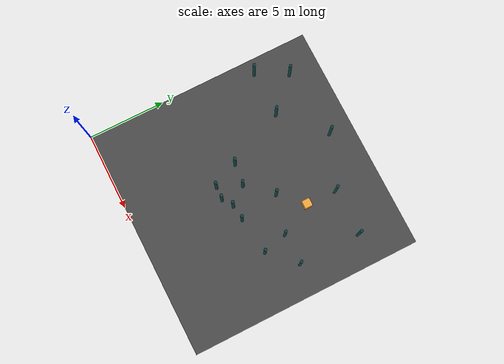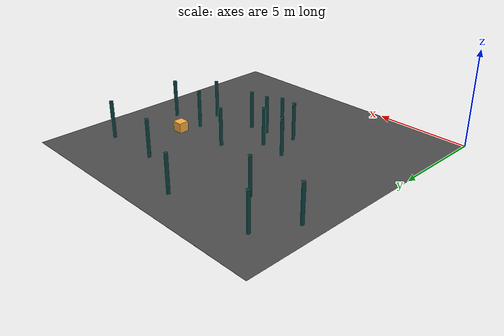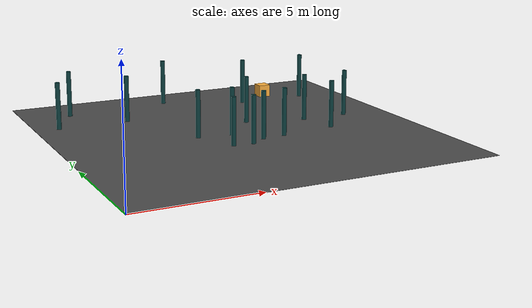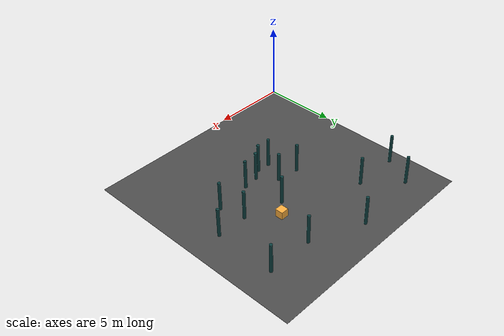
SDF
<sdf version="1.6">
 <world name="default">
  <model name="env_plane">
   <link name="link">
    <inertial>
     <mass>1</mass>
     <inertia><ixx>1</ixx><ixy>0</ixy><ixz>0</ixz><iyy>1</iyy><iyz>0</iyz><izz>1</izz></inertia>
    </inertial>
    <visual name="visual">
     <cast_shadows>0</cast_shadows>
     <geometry><box><size>15 15 0.01</size></box></geometry>
     <material>
      <script>
       <uri>model://asphalt_plane/materials/scripts</uri>
       <uri>model://asphalt_plane/materials/textures</uri>
       <name>vrc/asphalt</name>
      </script>
      <shader type="pixel"><normal_map>__default__</normal_map></shader>
      <diffuse>0.7 0.7 0.7 1</diffuse>
      <ambient>0.5 0.5 0.5 1</ambient>
      <specular>0.5 0.5 0.5 1</specular>
      <emissive>0.7 0.7 0.7 1</emissive>
     </material>
    </visual>
    <collision name="collision">
     <geometry><box><size>20 20 0.1</size></box></geometry>
     <surface>
      <friction>
       <ode><mu>1</mu><mu2>1</mu2><fdir1>0 0 0</fdir1><slip1>0</slip1><slip2>0</slip2></ode>
       <torsional>
        <coefficient>1</coefficient>
        <patch_radius>0</patch_radius>
        <surface_radius>0</surface_radius>
        <use_patch_radius>1</use_patch_radius>
        <ode><slip>0</slip></ode>
       </torsional>
      </friction>
      <bounce><restitution_coefficient>0</restitution_coefficient><threshold>1e+06</threshold></bounce>
      <contact>
       <collide_without_contact>0</collide_without_contact>
       <collide_without_contact_bitmask>1</collide_without_contact_bitmask>
       <collide_bitmask>1</collide_bitmask>
       <ode>
        <soft_cfm>0</soft_cfm>
        <soft_erp>0.2</soft_erp>
        <kp>1e+13</kp>
        <kd>1</kd>
        <max_vel>0.01</max_vel>
        <min_depth>0</min_depth>
       </ode>
       <bullet>
        <split_impulse>1</split_impulse>
        <split_impulse_penetration_threshold>-0.01</split_impulse_penetration_threshold>
        <soft_cfm>0</soft_cfm>
        <soft_erp>0.2</soft_erp>
        <kp>1e+13</kp>
        <kd>1</kd>
       </bullet>
      </contact>
     </surface>
    </collision>
   </link>
   <static>1</static>
   <pose>7.5 7.5 0 0 -0 0</pose>
  </model>
  <model name="obstacle">
   <link name="link">
    <inertial>
     <mass>112.569</mass>
     <inertia><ixx>33.2512</ixx><ixy>0</ixy><ixz>0</ixz><iyy>33.2512</iyy><iyz>0</iyz><izz>0.537779</izz></inertia>
    </inertial>
    <visual name="visual">
     <geometry><cylinder><radius>0.1</radius><length>2</length></cylinder></geometry>
     <material>
      <script><name>Gazebo/Grey</name><uri>file://media/materials/scripts/gazebo.material</uri></script>
      <shader type="pixel"><normal_map>__default__</normal_map></shader>
      <ambient>0.05 0.25 0.25 1</ambient>
      <diffuse>0.3 0.3 0.3 1</diffuse>
      <specular>0.01 0.01 0.01 1</specular>
      <emissive>0.1 0.1 0.1 1</emissive>
      <lighting>1</lighting>
     </material>
    </visual>
    <collision name="collision">
     <geometry><cylinder><radius>0.097748</radius><length>1.87509</length></cylinder></geometry>
     <surface>
      <friction>
       <ode><mu>1</mu><mu2>1</mu2><fdir1>0 0 0</fdir1><slip1>0</slip1><slip2>0</slip2></ode>
       <torsional>
        <coefficient>1</coefficient>
        <patch_radius>0</patch_radius>
        <surface_radius>0</surface_radius>
        <use_patch_radius>1</use_patch_radius>
        <ode><slip>0</slip></ode>
       </torsional>
      </friction>
      <bounce><restitution_coefficient>0</restitution_coefficient><threshold>1e+06</threshold></bounce>
      <contact>
       <collide_without_contact>0</collide_without_contact>
       <collide_without_contact_bitmask>1</collide_without_contact_bitmask>
       <collide_bitmask>1</collide_bitmask>
       <ode>
        <soft_cfm>0</soft_cfm>
        <soft_erp>0.2</soft_erp>
        <kp>1e+13</kp>
        <kd>1</kd>
        <max_vel>0.01</max_vel>
        <min_depth>0</min_depth>
       </ode>
       <bullet>
        <split_impulse>1</split_impulse>
        <split_impulse_penetration_threshold>-0.01</split_impulse_penetration_threshold>
        <soft_cfm>0</soft_cfm>
        <soft_erp>0.2</soft_erp>
        <kp>1e+13</kp>
        <kd>1</kd>
       </bullet>
      </contact>
     </surface>
    </collision>
   </link>
   <static>0</static>
   <pose>6.48533 5.60755 0.987541 -5.5e-05 2.7e-05 0.005159</pose>
  </model>
  <model name="obstacle_clone_3">
   <link name="link">
    <inertial>
     <mass>112.569</mass>
     <inertia><ixx>33.2512</ixx><ixy>0</ixy><ixz>0</ixz><iyy>33.2512</iyy><iyz>0</iyz><izz>0.537779</izz></inertia>
    </inertial>
    <visual name="visual">
     <geometry><cylinder><radius>0.1</radius><length>2</length></cylinder></geometry>
     <material>
      <script><name>Gazebo/Grey</name><uri>file://media/materials/scripts/gazebo.material</uri></script>
      <shader type="pixel"><normal_map>__default__</normal_map></shader>
      <ambient>0.05 0.25 0.25 1</ambient>
      <diffuse>0.3 0.3 0.3 1</diffuse>
      <specular>0.01 0.01 0.01 1</specular>
      <emissive>0.1 0.1 0.1 1</emissive>
      <lighting>1</lighting>
     </material>
    </visual>
    <collision name="collision">
     <geometry><cylinder><radius>0.097748</radius><length>1.87509</length></cylinder></geometry>
     <surface>
      <friction>
       <ode><mu>1</mu><mu2>1</mu2><fdir1>0 0 0</fdir1><slip1>0</slip1><slip2>0</slip2></ode>
       <torsional>
        <coefficient>1</coefficient>
        <patch_radius>0</patch_radius>
        <surface_radius>0</surface_radius>
        <use_patch_radius>1</use_patch_radius>
        <ode><slip>0</slip></ode>
       </torsional>
      </friction>
      <bounce><restitution_coefficient>0</restitution_coefficient><threshold>1e+06</threshold></bounce>
      <contact>
       <collide_without_contact>0</collide_without_contact>
       <collide_without_contact_bitmask>1</collide_without_contact_bitmask>
       <collide_bitmask>1</collide_bitmask>
       <ode>
        <soft_cfm>0</soft_cfm>
        <soft_erp>0.2</soft_erp>
        <kp>1e+13</kp>
        <kd>1</kd>
        <max_vel>0.01</max_vel>
        <min_depth>0</min_depth>
       </ode>
       <bullet>
        <split_impulse>1</split_impulse>
        <split_impulse_penetration_threshold>-0.01</split_impulse_penetration_threshold>
        <soft_cfm>0</soft_cfm>
        <soft_erp>0.2</soft_erp>
        <kp>1e+13</kp>
        <kd>1</kd>
       </bullet>
      </contact>
     </surface>
    </collision>
   </link>
   <static>0</static>
   <pose>1.00015 11.0001 0.987542 -5.8e-05 2.6e-05 0.004277</pose>
  </model>
  <model name="obstacle_clone_5">
   <link name="link">
    <inertial>
     <mass>112.569</mass>
     <inertia><ixx>33.2512</ixx><ixy>0</ixy><ixz>0</ixz><iyy>33.2512</iyy><iyz>0</iyz><izz>0.537779</izz></inertia>
    </inertial>
    <visual name="visual">
     <geometry><cylinder><radius>0.1</radius><length>2</length></cylinder></geometry>
     <material>
      <script><name>Gazebo/Grey</name><uri>file://media/materials/scripts/gazebo.material</uri></script>
      <shader type="pixel"><normal_map>__default__</normal_map></shader>
      <ambient>0.05 0.25 0.25 1</ambient>
      <diffuse>0.3 0.3 0.3 1</diffuse>
      <specular>0.01 0.01 0.01 1</specular>
      <emissive>0.1 0.1 0.1 1</emissive>
      <lighting>1</lighting>
     </material>
    </visual>
    <collision name="collision">
     <geometry><cylinder><radius>0.097748</radius><length>1.87509</length></cylinder></geometry>
     <surface>
      <friction>
       <ode><mu>1</mu><mu2>1</mu2><fdir1>0 0 0</fdir1><slip1>0</slip1><slip2>0</slip2></ode>
       <torsional>
        <coefficient>1</coefficient>
        <patch_radius>0</patch_radius>
        <surface_radius>0</surface_radius>
        <use_patch_radius>1</use_patch_radius>
        <ode><slip>0</slip></ode>
       </torsional>
      </friction>
      <bounce><restitution_coefficient>0</restitution_coefficient><threshold>1e+06</threshold></bounce>
      <contact>
       <collide_without_contact>0</collide_without_contact>
       <collide_without_contact_bitmask>1</collide_without_contact_bitmask>
       <collide_bitmask>1</collide_bitmask>
       <ode>
        <soft_cfm>0</soft_cfm>
        <soft_erp>0.2</soft_erp>
        <kp>1e+13</kp>
        <kd>1</kd>
        <max_vel>0.01</max_vel>
        <min_depth>0</min_depth>
       </ode>
       <bullet>
        <split_impulse>1</split_impulse>
        <split_impulse_penetration_threshold>-0.01</split_impulse_penetration_threshold>
        <soft_cfm>0</soft_cfm>
        <soft_erp>0.2</soft_erp>
        <kp>1e+13</kp>
        <kd>1</kd>
       </bullet>
      </contact>
     </surface>
    </collision>
   </link>
   <static>0</static>
   <pose>2.05222 12.9605 0.987542 -5.9e-05 2.7e-05 0.007141</pose>
  </model>
  <model name="obstacle_clone_6">
   <link name="link">
    <inertial>
     <mass>112.569</mass>
     <inertia><ixx>33.2512</ixx><ixy>0</ixy><ixz>0</ixz><iyy>33.2512</iyy><iyz>0</iyz><izz>0.537779</izz></inertia>
    </inertial>
    <visual name="visual">
     <geometry><cylinder><radius>0.1</radius><length>2</length></cylinder></geometry>
     <material>
      <script><name>Gazebo/Grey</name><uri>file://media/materials/scripts/gazebo.material</uri></script>
      <shader type="pixel"><normal_map>__default__</normal_map></shader>
      <ambient>0.05 0.25 0.25 1</ambient>
      <diffuse>0.3 0.3 0.3 1</diffuse>
      <specular>0.01 0.01 0.01 1</specular>
      <emissive>0.1 0.1 0.1 1</emissive>
      <lighting>1</lighting>
     </material>
    </visual>
    <collision name="collision">
     <geometry><cylinder><radius>0.097748</radius><length>1.87509</length></cylinder></geometry>
     <surface>
      <friction>
       <ode><mu>1</mu><mu2>1</mu2><fdir1>0 0 0</fdir1><slip1>0</slip1><slip2>0</slip2></ode>
       <torsional>
        <coefficient>1</coefficient>
        <patch_radius>0</patch_radius>
        <surface_radius>0</surface_radius>
        <use_patch_radius>1</use_patch_radius>
        <ode><slip>0</slip></ode>
       </torsional>
      </friction>
      <bounce><restitution_coefficient>0</restitution_coefficient><threshold>1e+06</threshold></bounce>
      <contact>
       <collide_without_contact>0</collide_without_contact>
       <collide_without_contact_bitmask>1</collide_without_contact_bitmask>
       <collide_bitmask>1</collide_bitmask>
       <ode>
        <soft_cfm>0</soft_cfm>
        <soft_erp>0.2</soft_erp>
        <kp>1e+13</kp>
        <kd>1</kd>
        <max_vel>0.01</max_vel>
        <min_depth>0</min_depth>
       </ode>
       <bullet>
        <split_impulse>1</split_impulse>
        <split_impulse_penetration_threshold>-0.01</split_impulse_penetration_threshold>
        <soft_cfm>0</soft_cfm>
        <soft_erp>0.2</soft_erp>
        <kp>1e+13</kp>
        <kd>1</kd>
       </bullet>
      </contact>
     </surface>
    </collision>
   </link>
   <static>0</static>
   <pose>11.4122 6.43081 0.98755 -5.4e-05 2.3e-05 0.007286</pose>
  </model>
  <model name="obstacle_clone_9">
   <link name="link">
    <inertial>
     <mass>112.569</mass>
     <inertia><ixx>33.2512</ixx><ixy>0</ixy><ixz>0</ixz><iyy>33.2512</iyy><iyz>0</iyz><izz>0.537779</izz></inertia>
    </inertial>
    <visual name="visual">
     <geometry><cylinder><radius>0.1</radius><length>2</length></cylinder></geometry>
     <material>
      <script><name>Gazebo/Grey</name><uri>file://media/materials/scripts/gazebo.material</uri></script>
      <shader type="pixel"><normal_map>__default__</normal_map></shader>
      <ambient>0.05 0.25 0.25 1</ambient>
      <diffuse>0.3 0.3 0.3 1</diffuse>
      <specular>0.01 0.01 0.01 1</specular>
      <emissive>0.1 0.1 0.1 1</emissive>
      <lighting>1</lighting>
     </material>
    </visual>
    <collision name="collision">
     <geometry><cylinder><radius>0.097748</radius><length>1.87509</length></cylinder></geometry>
     <surface>
      <friction>
       <ode><mu>1</mu><mu2>1</mu2><fdir1>0 0 0</fdir1><slip1>0</slip1><slip2>0</slip2></ode>
       <torsional>
        <coefficient>1</coefficient>
        <patch_radius>0</patch_radius>
        <surface_radius>0</surface_radius>
        <use_patch_radius>1</use_patch_radius>
        <ode><slip>0</slip></ode>
       </torsional>
      </friction>
      <bounce><restitution_coefficient>0</restitution_coefficient><threshold>1e+06</threshold></bounce>
      <contact>
       <collide_without_contact>0</collide_without_contact>
       <collide_without_contact_bitmask>1</collide_without_contact_bitmask>
       <collide_bitmask>1</collide_bitmask>
       <ode>
        <soft_cfm>0</soft_cfm>
        <soft_erp>0.2</soft_erp>
        <kp>1e+13</kp>
        <kd>1</kd>
        <max_vel>0.01</max_vel>
        <min_depth>0</min_depth>
       </ode>
       <bullet>
        <split_impulse>1</split_impulse>
        <split_impulse_penetration_threshold>-0.01</split_impulse_penetration_threshold>
        <soft_cfm>0</soft_cfm>
        <soft_erp>0.2</soft_erp>
        <kp>1e+13</kp>
        <kd>1</kd>
       </bullet>
      </contact>
     </surface>
    </collision>
   </link>
   <static>0</static>
   <pose>5.69888 7.28334 0.987541 -5e-05 2.4e-05 0.007266</pose>
  </model>
  <model name="obstacle_clone_12">
   <link name="link">
    <inertial>
     <mass>112.569</mass>
     <inertia><ixx>33.2512</ixx><ixy>0</ixy><ixz>0</ixz><iyy>33.2512</iyy><iyz>0</iyz><izz>0.537779</izz></inertia>
    </inertial>
    <visual name="visual">
     <geometry><cylinder><radius>0.1</radius><length>2</length></cylinder></geometry>
     <material>
      <script><name>Gazebo/Grey</name><uri>file://media/materials/scripts/gazebo.material</uri></script>
      <shader type="pixel"><normal_map>__default__</normal_map></shader>
      <ambient>0.05 0.25 0.25 1</ambient>
      <diffuse>0.3 0.3 0.3 1</diffuse>
      <specular>0.01 0.01 0.01 1</specular>
      <emissive>0.1 0.1 0.1 1</emissive>
      <lighting>1</lighting>
     </material>
    </visual>
    <collision name="collision">
     <geometry><cylinder><radius>0.097748</radius><length>1.87509</length></cylinder></geometry>
     <surface>
      <friction>
       <ode><mu>1</mu><mu2>1</mu2><fdir1>0 0 0</fdir1><slip1>0</slip1><slip2>0</slip2></ode>
       <torsional>
        <coefficient>1</coefficient>
        <patch_radius>0</patch_radius>
        <surface_radius>0</surface_radius>
        <use_patch_radius>1</use_patch_radius>
        <ode><slip>0</slip></ode>
       </torsional>
      </friction>
      <bounce><restitution_coefficient>0</restitution_coefficient><threshold>1e+06</threshold></bounce>
      <contact>
       <collide_without_contact>0</collide_without_contact>
       <collide_without_contact_bitmask>1</collide_without_contact_bitmask>
       <collide_bitmask>1</collide_bitmask>
       <ode>
        <soft_cfm>0</soft_cfm>
        <soft_erp>0.2</soft_erp>
        <kp>1e+13</kp>
        <kd>1</kd>
        <max_vel>0.01</max_vel>
        <min_depth>0</min_depth>
       </ode>
       <bullet>
        <split_impulse>1</split_impulse>
        <split_impulse_penetration_threshold>-0.01</split_impulse_penetration_threshold>
        <soft_cfm>0</soft_cfm>
        <soft_erp>0.2</soft_erp>
        <kp>1e+13</kp>
        <kd>1</kd>
       </bullet>
      </contact>
     </surface>
    </collision>
   </link>
   <static>0</static>
   <pose>8.55041 8.66661 0.987542 -6e-05 2.7e-05 0.007355</pose>
  </model>
  <model name="obstacle_clone_16">
   <link name="link">
    <inertial>
     <mass>112.569</mass>
     <inertia><ixx>33.2512</ixx><ixy>0</ixy><ixz>0</ixz><iyy>33.2512</iyy><iyz>0</iyz><izz>0.537779</izz></inertia>
    </inertial>
    <visual name="visual">
     <geometry><cylinder><radius>0.1</radius><length>2</length></cylinder></geometry>
     <material>
      <script><name>Gazebo/Grey</name><uri>file://media/materials/scripts/gazebo.material</uri></script>
      <shader type="pixel"><normal_map>__default__</normal_map></shader>
      <ambient>0.05 0.25 0.25 1</ambient>
      <diffuse>0.3 0.3 0.3 1</diffuse>
      <specular>0.01 0.01 0.01 1</specular>
      <emissive>0.1 0.1 0.1 1</emissive>
      <lighting>1</lighting>
     </material>
    </visual>
    <collision name="collision">
     <geometry><cylinder><radius>0.097748</radius><length>1.87509</length></cylinder></geometry>
     <surface>
      <friction>
       <ode><mu>1</mu><mu2>1</mu2><fdir1>0 0 0</fdir1><slip1>0</slip1><slip2>0</slip2></ode>
       <torsional>
        <coefficient>1</coefficient>
        <patch_radius>0</patch_radius>
        <surface_radius>0</surface_radius>
        <use_patch_radius>1</use_patch_radius>
        <ode><slip>0</slip></ode>
       </torsional>
      </friction>
      <bounce><restitution_coefficient>0</restitution_coefficient><threshold>1e+06</threshold></bounce>
      <contact>
       <collide_without_contact>0</collide_without_contact>
       <collide_without_contact_bitmask>1</collide_without_contact_bitmask>
       <collide_bitmask>1</collide_bitmask>
       <ode>
        <soft_cfm>0</soft_cfm>
        <soft_erp>0.2</soft_erp>
        <kp>1e+13</kp>
        <kd>1</kd>
        <max_vel>0.01</max_vel>
        <min_depth>0</min_depth>
       </ode>
       <bullet>
        <split_impulse>1</split_impulse>
        <split_impulse_penetration_threshold>-0.01</split_impulse_penetration_threshold>
        <soft_cfm>0</soft_cfm>
        <soft_erp>0.2</soft_erp>
        <kp>1e+13</kp>
        <kd>1</kd>
       </bullet>
      </contact>
     </surface>
    </collision>
   </link>
   <static>0</static>
   <pose>4.00037 11 0.987542 -6.1e-05 2.6e-05 0.006905</pose>
  </model>
  <model name="obstacle_clone_17">
   <link name="link">
    <inertial>
     <mass>112.569</mass>
     <inertia><ixx>33.2512</ixx><ixy>0</ixy><ixz>0</ixz><iyy>33.2512</iyy><iyz>0</iyz><izz>0.537779</izz></inertia>
    </inertial>
    <visual name="visual">
     <geometry><cylinder><radius>0.1</radius><length>2</length></cylinder></geometry>
     <material>
      <script><name>Gazebo/Grey</name><uri>file://media/materials/scripts/gazebo.material</uri></script>
      <shader type="pixel"><normal_map>__default__</normal_map></shader>
      <ambient>0.05 0.25 0.25 1</ambient>
      <diffuse>0.3 0.3 0.3 1</diffuse>
      <specular>0.01 0.01 0.01 1</specular>
      <emissive>0.1 0.1 0.1 1</emissive>
      <lighting>1</lighting>
     </material>
    </visual>
    <collision name="collision">
     <geometry><cylinder><radius>0.097748</radius><length>1.87509</length></cylinder></geometry>
     <surface>
      <friction>
       <ode><mu>1</mu><mu2>1</mu2><fdir1>0 0 0</fdir1><slip1>0</slip1><slip2>0</slip2></ode>
       <torsional>
        <coefficient>1</coefficient>
        <patch_radius>0</patch_radius>
        <surface_radius>0</surface_radius>
        <use_patch_radius>1</use_patch_radius>
        <ode><slip>0</slip></ode>
       </torsional>
      </friction>
      <bounce><restitution_coefficient>0</restitution_coefficient><threshold>1e+06</threshold></bounce>
      <contact>
       <collide_without_contact>0</collide_without_contact>
       <collide_without_contact_bitmask>1</collide_without_contact_bitmask>
       <collide_bitmask>1</collide_bitmask>
       <ode>
        <soft_cfm>0</soft_cfm>
        <soft_erp>0.2</soft_erp>
        <kp>1e+13</kp>
        <kd>1</kd>
        <max_vel>0.01</max_vel>
        <min_depth>0</min_depth>
       </ode>
       <bullet>
        <split_impulse>1</split_impulse>
        <split_impulse_penetration_threshold>-0.01</split_impulse_penetration_threshold>
        <soft_cfm>0</soft_cfm>
        <soft_erp>0.2</soft_erp>
        <kp>1e+13</kp>
        <kd>1</kd>
       </bullet>
      </contact>
     </surface>
    </collision>
   </link>
   <static>0</static>
   <pose>7.12315 7.0992 0.987551 -5.7e-05 2.9e-05 0.007229</pose>
  </model>
  <model name="obstacle_clone_18">
   <link name="link">
    <inertial>
     <mass>112.569</mass>
     <inertia><ixx>33.2512</ixx><ixy>0</ixy><ixz>0</ixz><iyy>33.2512</iyy><iyz>0</iyz><izz>0.537779</izz></inertia>
    </inertial>
    <visual name="visual">
     <geometry><cylinder><radius>0.1</radius><length>2</length></cylinder></geometry>
     <material>
      <script><name>Gazebo/Grey</name><uri>file://media/materials/scripts/gazebo.material</uri></script>
      <shader type="pixel"><normal_map>__default__</normal_map></shader>
      <ambient>0.05 0.25 0.25 1</ambient>
      <diffuse>0.3 0.3 0.3 1</diffuse>
      <specular>0.01 0.01 0.01 1</specular>
      <emissive>0.1 0.1 0.1 1</emissive>
      <lighting>1</lighting>
     </material>
    </visual>
    <collision name="collision">
     <geometry><cylinder><radius>0.097748</radius><length>1.87509</length></cylinder></geometry>
     <surface>
      <friction>
       <ode><mu>1</mu><mu2>1</mu2><fdir1>0 0 0</fdir1><slip1>0</slip1><slip2>0</slip2></ode>
       <torsional>
        <coefficient>1</coefficient>
        <patch_radius>0</patch_radius>
        <surface_radius>0</surface_radius>
        <use_patch_radius>1</use_patch_radius>
        <ode><slip>0</slip></ode>
       </torsional>
      </friction>
      <bounce><restitution_coefficient>0</restitution_coefficient><threshold>1e+06</threshold></bounce>
      <contact>
       <collide_without_contact>0</collide_without_contact>
       <collide_without_contact_bitmask>1</collide_without_contact_bitmask>
       <collide_bitmask>1</collide_bitmask>
       <ode>
        <soft_cfm>0</soft_cfm>
        <soft_erp>0.2</soft_erp>
        <kp>1e+13</kp>
        <kd>1</kd>
        <max_vel>0.01</max_vel>
        <min_depth>0</min_depth>
       </ode>
       <bullet>
        <split_impulse>1</split_impulse>
        <split_impulse_penetration_threshold>-0.01</split_impulse_penetration_threshold>
        <soft_cfm>0</soft_cfm>
        <soft_erp>0.2</soft_erp>
        <kp>1e+13</kp>
        <kd>1</kd>
       </bullet>
      </contact>
     </surface>
    </collision>
   </link>
   <static>0</static>
   <pose>11.0004 8.00007 0.987542 -6.1e-05 2.6e-05 0.007301</pose>
  </model>
  <model name="obstacle_clone_19">
   <link name="link">
    <inertial>
     <mass>112.569</mass>
     <inertia><ixx>33.2512</ixx><ixy>0</ixy><ixz>0</ixz><iyy>33.2512</iyy><iyz>0</iyz><izz>0.537779</izz></inertia>
    </inertial>
    <visual name="visual">
     <geometry><cylinder><radius>0.1</radius><length>2</length></cylinder></geometry>
     <material>
      <script><name>Gazebo/Grey</name><uri>file://media/materials/scripts/gazebo.material</uri></script>
      <shader type="pixel"><normal_map>__default__</normal_map></shader>
      <ambient>0.05 0.25 0.25 1</ambient>
      <diffuse>0.3 0.3 0.3 1</diffuse>
      <specular>0.01 0.01 0.01 1</specular>
      <emissive>0.1 0.1 0.1 1</emissive>
      <lighting>1</lighting>
     </material>
    </visual>
    <collision name="collision">
     <geometry><cylinder><radius>0.097748</radius><length>1.87509</length></cylinder></geometry>
     <surface>
      <friction>
       <ode><mu>1</mu><mu2>1</mu2><fdir1>0 0 0</fdir1><slip1>0</slip1><slip2>0</slip2></ode>
       <torsional>
        <coefficient>1</coefficient>
        <patch_radius>0</patch_radius>
        <surface_radius>0</surface_radius>
        <use_patch_radius>1</use_patch_radius>
        <ode><slip>0</slip></ode>
       </torsional>
      </friction>
      <bounce><restitution_coefficient>0</restitution_coefficient><threshold>1e+06</threshold></bounce>
      <contact>
       <collide_without_contact>0</collide_without_contact>
       <collide_without_contact_bitmask>1</collide_without_contact_bitmask>
       <collide_bitmask>1</collide_bitmask>
       <ode>
        <soft_cfm>0</soft_cfm>
        <soft_erp>0.2</soft_erp>
        <kp>1e+13</kp>
        <kd>1</kd>
        <max_vel>0.01</max_vel>
        <min_depth>0</min_depth>
       </ode>
       <bullet>
        <split_impulse>1</split_impulse>
        <split_impulse_penetration_threshold>-0.01</split_impulse_penetration_threshold>
        <soft_cfm>0</soft_cfm>
        <soft_erp>0.2</soft_erp>
        <kp>1e+13</kp>
        <kd>1</kd>
       </bullet>
      </contact>
     </surface>
    </collision>
   </link>
   <static>0</static>
   <pose>10.0001 12 0.987545 -2.4e-05 4.3e-05 0.003673</pose>
  </model>
  <model name="obstacle_clone_20">
   <link name="link">
    <inertial>
     <mass>112.569</mass>
     <inertia><ixx>33.2512</ixx><ixy>0</ixy><ixz>0</ixz><iyy>33.2512</iyy><iyz>0</iyz><izz>0.537779</izz></inertia>
    </inertial>
    <visual name="visual">
     <geometry><cylinder><radius>0.1</radius><length>2</length></cylinder></geometry>
     <material>
      <script><name>Gazebo/Grey</name><uri>file://media/materials/scripts/gazebo.material</uri></script>
      <shader type="pixel"><normal_map>__default__</normal_map></shader>
      <ambient>0.05 0.25 0.25 1</ambient>
      <diffuse>0.3 0.3 0.3 1</diffuse>
      <specular>0.01 0.01 0.01 1</specular>
      <emissive>0.1 0.1 0.1 1</emissive>
      <lighting>1</lighting>
     </material>
    </visual>
    <collision name="collision">
     <geometry><cylinder><radius>0.097748</radius><length>1.87509</length></cylinder></geometry>
     <surface>
      <friction>
       <ode><mu>1</mu><mu2>1</mu2><fdir1>0 0 0</fdir1><slip1>0</slip1><slip2>0</slip2></ode>
       <torsional>
        <coefficient>1</coefficient>
        <patch_radius>0</patch_radius>
        <surface_radius>0</surface_radius>
        <use_patch_radius>1</use_patch_radius>
        <ode><slip>0</slip></ode>
       </torsional>
      </friction>
      <bounce><restitution_coefficient>0</restitution_coefficient><threshold>1e+06</threshold></bounce>
      <contact>
       <collide_without_contact>0</collide_without_contact>
       <collide_without_contact_bitmask>1</collide_without_contact_bitmask>
       <collide_bitmask>1</collide_bitmask>
       <ode>
        <soft_cfm>0</soft_cfm>
        <soft_erp>0.2</soft_erp>
        <kp>1e+13</kp>
        <kd>1</kd>
        <max_vel>0.01</max_vel>
        <min_depth>0</min_depth>
       </ode>
       <bullet>
        <split_impulse>1</split_impulse>
        <split_impulse_penetration_threshold>-0.01</split_impulse_penetration_threshold>
        <soft_cfm>0</soft_cfm>
        <soft_erp>0.2</soft_erp>
        <kp>1e+13</kp>
        <kd>1</kd>
       </bullet>
      </contact>
     </surface>
    </collision>
   </link>
   <static>0</static>
   <pose>13.0001 12 0.987543 -1.2e-05 3.1e-05 0.003566</pose>
  </model>
  <model name="obstacle_clone_22">
   <link name="link">
    <inertial>
     <mass>112.569</mass>
     <inertia><ixx>33.2512</ixx><ixy>0</ixy><ixz>0</ixz><iyy>33.2512</iyy><iyz>0</iyz><izz>0.537779</izz></inertia>
    </inertial>
    <visual name="visual">
     <geometry><cylinder><radius>0.1</radius><length>2</length></cylinder></geometry>
     <material>
      <script><name>Gazebo/Grey</name><uri>file://media/materials/scripts/gazebo.material</uri></script>
      <shader type="pixel"><normal_map>__default__</normal_map></shader>
      <ambient>0.05 0.25 0.25 1</ambient>
      <diffuse>0.3 0.3 0.3 1</diffuse>
      <specular>0.01 0.01 0.01 1</specular>
      <emissive>0.1 0.1 0.1 1</emissive>
      <lighting>1</lighting>
     </material>
    </visual>
    <collision name="collision">
     <geometry><cylinder><radius>0.097748</radius><length>1.87509</length></cylinder></geometry>
     <surface>
      <friction>
       <ode><mu>1</mu><mu2>1</mu2><fdir1>0 0 0</fdir1><slip1>0</slip1><slip2>0</slip2></ode>
       <torsional>
        <coefficient>1</coefficient>
        <patch_radius>0</patch_radius>
        <surface_radius>0</surface_radius>
        <use_patch_radius>1</use_patch_radius>
        <ode><slip>0</slip></ode>
       </torsional>
      </friction>
      <bounce><restitution_coefficient>0</restitution_coefficient><threshold>1e+06</threshold></bounce>
      <contact>
       <collide_without_contact>0</collide_without_contact>
       <collide_without_contact_bitmask>1</collide_without_contact_bitmask>
       <collide_bitmask>1</collide_bitmask>
       <ode>
        <soft_cfm>0</soft_cfm>
        <soft_erp>0.2</soft_erp>
        <kp>1e+13</kp>
        <kd>1</kd>
        <max_vel>0.01</max_vel>
        <min_depth>0</min_depth>
       </ode>
       <bullet>
        <split_impulse>1</split_impulse>
        <split_impulse_penetration_threshold>-0.01</split_impulse_penetration_threshold>
        <soft_cfm>0</soft_cfm>
        <soft_erp>0.2</soft_erp>
        <kp>1e+13</kp>
        <kd>1</kd>
       </bullet>
      </contact>
     </surface>
    </collision>
   </link>
   <static>0</static>
   <pose>8.00039 6.00008 0.987552 -6.3e-05 2.9e-05 0.007035</pose>
  </model>
  <model name="obstacle_clone_27">
   <link name="link">
    <inertial>
     <mass>112.569</mass>
     <inertia><ixx>33.2512</ixx><ixy>0</ixy><ixz>0</ixz><iyy>33.2512</iyy><iyz>0</iyz><izz>0.537779</izz></inertia>
    </inertial>
    <visual name="visual">
     <geometry><cylinder><radius>0.1</radius><length>2</length></cylinder></geometry>
     <material>
      <script><name>Gazebo/Grey</name><uri>file://media/materials/scripts/gazebo.material</uri></script>
      <shader type="pixel"><normal_map>__default__</normal_map></shader>
      <ambient>0.05 0.25 0.25 1</ambient>
      <diffuse>0.3 0.3 0.3 1</diffuse>
      <specular>0.01 0.01 0.01 1</specular>
      <emissive>0.1 0.1 0.1 1</emissive>
      <lighting>1</lighting>
     </material>
    </visual>
    <collision name="collision">
     <geometry><cylinder><radius>0.097748</radius><length>1.87509</length></cylinder></geometry>
     <surface>
      <friction>
       <ode><mu>1</mu><mu2>1</mu2><fdir1>0 0 0</fdir1><slip1>0</slip1><slip2>0</slip2></ode>
       <torsional>
        <coefficient>1</coefficient>
        <patch_radius>0</patch_radius>
        <surface_radius>0</surface_radius>
        <use_patch_radius>1</use_patch_radius>
        <ode><slip>0</slip></ode>
       </torsional>
      </friction>
      <bounce><restitution_coefficient>0</restitution_coefficient><threshold>1e+06</threshold></bounce>
      <contact>
       <collide_without_contact>0</collide_without_contact>
       <collide_without_contact_bitmask>1</collide_without_contact_bitmask>
       <collide_bitmask>1</collide_bitmask>
       <ode>
        <soft_cfm>0</soft_cfm>
        <soft_erp>0.2</soft_erp>
        <kp>1e+13</kp>
        <kd>1</kd>
        <max_vel>0.01</max_vel>
        <min_depth>0</min_depth>
       </ode>
       <bullet>
        <split_impulse>1</split_impulse>
        <split_impulse_penetration_threshold>-0.01</split_impulse_penetration_threshold>
        <soft_cfm>0</soft_cfm>
        <soft_erp>0.2</soft_erp>
        <kp>1e+13</kp>
        <kd>1</kd>
       </bullet>
      </contact>
     </surface>
    </collision>
   </link>
   <static>0</static>
   <pose>13.0004 8.00009 0.987542 -5.8e-05 2.6e-05 0.006669</pose>
  </model>
  <model name="obstacle_clone_28">
   <link name="link">
    <inertial>
     <mass>112.569</mass>
     <inertia><ixx>33.2512</ixx><ixy>0</ixy><ixz>0</ixz><iyy>33.2512</iyy><iyz>0</iyz><izz>0.537779</izz></inertia>
    </inertial>
    <visual name="visual">
     <geometry><cylinder><radius>0.1</radius><length>2</length></cylinder></geometry>
     <material>
      <script><name>Gazebo/Grey</name><uri>file://media/materials/scripts/gazebo.material</uri></script>
      <shader type="pixel"><normal_map>__default__</normal_map></shader>
      <ambient>0.05 0.25 0.25 1</ambient>
      <diffuse>0.3 0.3 0.3 1</diffuse>
      <specular>0.01 0.01 0.01 1</specular>
      <emissive>0.1 0.1 0.1 1</emissive>
      <lighting>1</lighting>
     </material>
    </visual>
    <collision name="collision">
     <geometry><cylinder><radius>0.097748</radius><length>1.87509</length></cylinder></geometry>
     <surface>
      <friction>
       <ode><mu>1</mu><mu2>1</mu2><fdir1>0 0 0</fdir1><slip1>0</slip1><slip2>0</slip2></ode>
       <torsional>
        <coefficient>1</coefficient>
        <patch_radius>0</patch_radius>
        <surface_radius>0</surface_radius>
        <use_patch_radius>1</use_patch_radius>
        <ode><slip>0</slip></ode>
       </torsional>
      </friction>
      <bounce><restitution_coefficient>0</restitution_coefficient><threshold>1e+06</threshold></bounce>
      <contact>
       <collide_without_contact>0</collide_without_contact>
       <collide_without_contact_bitmask>1</collide_without_contact_bitmask>
       <collide_bitmask>1</collide_bitmask>
       <ode>
        <soft_cfm>0</soft_cfm>
        <soft_erp>0.2</soft_erp>
        <kp>1e+13</kp>
        <kd>1</kd>
        <max_vel>0.01</max_vel>
        <min_depth>0</min_depth>
       </ode>
       <bullet>
        <split_impulse>1</split_impulse>
        <split_impulse_penetration_threshold>-0.01</split_impulse_penetration_threshold>
        <soft_cfm>0</soft_cfm>
        <soft_erp>0.2</soft_erp>
        <kp>1e+13</kp>
        <kd>1</kd>
       </bullet>
      </contact>
     </surface>
    </collision>
   </link>
   <static>0</static>
   <pose>6.62099 13.408 0.987546 -4e-05 2.3e-05 0.003763</pose>
  </model>
  <model name="obstacle_clone_30">
   <link name="link">
    <inertial>
     <mass>112.569</mass>
     <inertia><ixx>33.2512</ixx><ixy>0</ixy><ixz>0</ixz><iyy>33.2512</iyy><iyz>0</iyz><izz>0.537779</izz></inertia>
    </inertial>
    <visual name="visual">
     <geometry><cylinder><radius>0.1</radius><length>2</length></cylinder></geometry>
     <material>
      <script><name>Gazebo/Grey</name><uri>file://media/materials/scripts/gazebo.material</uri></script>
      <shader type="pixel"><normal_map>__default__</normal_map></shader>
      <ambient>0.05 0.25 0.25 1</ambient>
      <diffuse>0.3 0.3 0.3 1</diffuse>
      <specular>0.01 0.01 0.01 1</specular>
      <emissive>0.1 0.1 0.1 1</emissive>
      <lighting>1</lighting>
     </material>
    </visual>
    <collision name="collision">
     <geometry><cylinder><radius>0.097748</radius><length>1.87509</length></cylinder></geometry>
     <surface>
      <friction>
       <ode><mu>1</mu><mu2>1</mu2><fdir1>0 0 0</fdir1><slip1>0</slip1><slip2>0</slip2></ode>
       <torsional>
        <coefficient>1</coefficient>
        <patch_radius>0</patch_radius>
        <surface_radius>0</surface_radius>
        <use_patch_radius>1</use_patch_radius>
        <ode><slip>0</slip></ode>
       </torsional>
      </friction>
      <bounce><restitution_coefficient>0</restitution_coefficient><threshold>1e+06</threshold></bounce>
      <contact>
       <collide_without_contact>0</collide_without_contact>
       <collide_without_contact_bitmask>1</collide_without_contact_bitmask>
       <collide_bitmask>1</collide_bitmask>
       <ode>
        <soft_cfm>0</soft_cfm>
        <soft_erp>0.2</soft_erp>
        <kp>1e+13</kp>
        <kd>1</kd>
        <max_vel>0.01</max_vel>
        <min_depth>0</min_depth>
       </ode>
       <bullet>
        <split_impulse>1</split_impulse>
        <split_impulse_penetration_threshold>-0.01</split_impulse_penetration_threshold>
        <soft_cfm>0</soft_cfm>
        <soft_erp>0.2</soft_erp>
        <kp>1e+13</kp>
        <kd>1</kd>
       </bullet>
      </contact>
     </surface>
    </collision>
   </link>
   <static>0</static>
   <pose>8.9968 6.10445 0.987542 -6e-05 2.8e-05 0.00631</pose>
  </model>
  <model name="obstacle_clone_31">
   <link name="link">
    <inertial>
     <mass>112.569</mass>
     <inertia><ixx>33.2512</ixx><ixy>0</ixy><ixz>0</ixz><iyy>33.2512</iyy><iyz>0</iyz><izz>0.537779</izz></inertia>
    </inertial>
    <visual name="visual">
     <geometry><cylinder><radius>0.1</radius><length>2</length></cylinder></geometry>
     <material>
      <script><name>Gazebo/Grey</name><uri>file://media/materials/scripts/gazebo.material</uri></script>
      <shader type="pixel"><normal_map>__default__</normal_map></shader>
      <ambient>0.05 0.25 0.25 1</ambient>
      <diffuse>0.3 0.3 0.3 1</diffuse>
      <specular>0.01 0.01 0.01 1</specular>
      <emissive>0.1 0.1 0.1 1</emissive>
      <lighting>1</lighting>
     </material>
    </visual>
    <collision name="collision">
     <geometry><cylinder><radius>0.097748</radius><length>1.87509</length></cylinder></geometry>
     <surface>
      <friction>
       <ode><mu>1</mu><mu2>1</mu2><fdir1>0 0 0</fdir1><slip1>0</slip1><slip2>0</slip2></ode>
       <torsional>
        <coefficient>1</coefficient>
        <patch_radius>0</patch_radius>
        <surface_radius>0</surface_radius>
        <use_patch_radius>1</use_patch_radius>
        <ode><slip>0</slip></ode>
       </torsional>
      </friction>
      <bounce><restitution_coefficient>0</restitution_coefficient><threshold>1e+06</threshold></bounce>
      <contact>
       <collide_without_contact>0</collide_without_contact>
       <collide_without_contact_bitmask>1</collide_without_contact_bitmask>
       <collide_bitmask>1</collide_bitmask>
       <ode>
        <soft_cfm>0</soft_cfm>
        <soft_erp>0.2</soft_erp>
        <kp>1e+13</kp>
        <kd>1</kd>
        <max_vel>0.01</max_vel>
        <min_depth>0</min_depth>
       </ode>
       <bullet>
        <split_impulse>1</split_impulse>
        <split_impulse_penetration_threshold>-0.01</split_impulse_penetration_threshold>
        <soft_cfm>0</soft_cfm>
        <soft_erp>0.2</soft_erp>
        <kp>1e+13</kp>
        <kd>1</kd>
       </bullet>
      </contact>
     </surface>
    </collision>
   </link>
   <static>0</static>
   <pose>7.33374 5.55983 0.987541 -5.6e-05 2.5e-05 0.005821</pose>
  </model>
  <model name="destination">
   <link name="link">
    <inertial>
     <mass>0.0182097</mass>
     <inertia>
      <ixx>2.41e-05</ixx>
      <ixy>0</ixy>
      <ixz>0</ixz>
      <iyy>1.97e-05</iyy>
      <iyz>0</iyz>
      <izz>2.207e-05</izz>
     </inertia>
    </inertial>
    <gravity>0</gravity>
    <visual name="visual">
     <geometry><box><size>0.5 0.5 0.5</size></box></geometry>
     <material>
      <script><name>Gazebo/Grey</name><uri>file://media/materials/scripts/gazebo.material</uri></script>
      <shader type="pixel"><normal_map>__default__</normal_map></shader>
      <ambient>0.988 0.686 0.243 1</ambient>
      <diffuse>0.988 0.686 0.243 1</diffuse>
      <specular>0.988 0.686 0.243 1</specular>
      <emissive>0.988 0.686 0.243 1</emissive>
     </material>
    </visual>
    <collision name="collision">
     <geometry><box><size>0.5 0.5 0.5</size></box></geometry>
     <surface>
      <friction>
       <ode><mu>1</mu><mu2>1</mu2><fdir1>0 0 0</fdir1><slip1>0</slip1><slip2>0</slip2></ode>
       <torsional>
        <coefficient>1</coefficient>
        <patch_radius>0</patch_radius>
        <surface_radius>0</surface_radius>
        <use_patch_radius>1</use_patch_radius>
        <ode><slip>0</slip></ode>
       </torsional>
      </friction>
      <bounce><restitution_coefficient>0</restitution_coefficient><threshold>1e+06</threshold></bounce>
      <contact>
       <collide_without_contact>1</collide_without_contact>
       <collide_without_contact_bitmask>1</collide_without_contact_bitmask>
       <collide_bitmask>1</collide_bitmask>
       <ode>
        <soft_cfm>0</soft_cfm>
        <soft_erp>0.2</soft_erp>
        <kp>1e+13</kp>
        <kd>1</kd>
        <max_vel>0.01</max_vel>
        <min_depth>0</min_depth>
       </ode>
       <bullet>
        <split_impulse>1</split_impulse>
        <split_impulse_penetration_threshold>-0.01</split_impulse_penetration_threshold>
        <soft_cfm>0</soft_cfm>
        <soft_erp>0.2</soft_erp>
        <kp>1e+13</kp>
        <kd>1</kd>
       </bullet>
      </contact>
     </surface>
    </collision>
   </link>
   <static>0</static>
   <pose>10 10 1 0 -0 0</pose>
  </model>
 </world>
</sdf>
